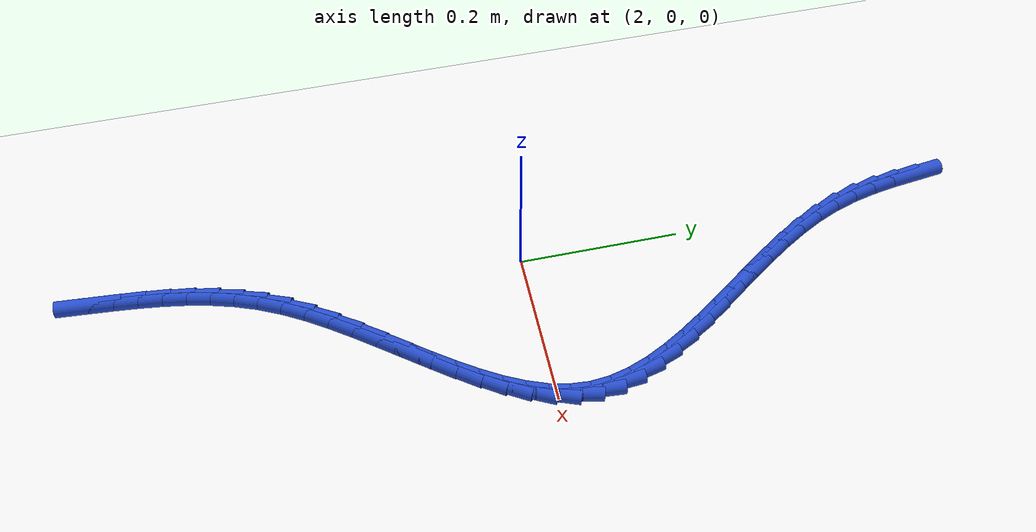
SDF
<sdf version="1.6">
 <world name="default">
  <model name="ground_plane">
   <static>1</static>
   <link name="link">
    <collision name="collision">
     <geometry><plane><normal>0 0 1</normal><size>100 100</size></plane></geometry>
     <surface><friction><ode><mu>100</mu><mu2>50</mu2></ode></friction></surface>
    </collision>
    <visual name="visual">
     <cast_shadows>0</cast_shadows>
     <geometry><plane><normal>0 0 1</normal><size>100 100</size></plane></geometry>
     <material>
      <script><uri>file://media/materials/scripts/gazebo.material</uri><name>Gazebo/WhiteGlow</name></script>
     </material>
    </visual>
   </link>
  </model>
  <model name="line">
   <link name="link_100">
    <pose>1.9789731982700294 0.5234563303718357 0.01 0 1.57 -1.442489842544429</pose>
    <collision name="collision">
     <geometry><cylinder><radius>0.01</radius><length>0.08</length></cylinder></geometry>
    </collision>
    <visual name="visual">
     <material>
      <script><name>Gazebo/Blue</name><uri>file://media/materials/scripts/gazebo.material</uri></script>
     </material>
     <geometry><cylinder><radius>0.01</radius><length>0.08</length></cylinder></geometry>
    </visual>
   </link>
   <link name="link_101">
    <pose>1.9827682625741108 0.49404070145301765 0.01 0 1.57 -1.396701460874202</pose>
    <collision name="collision">
     <geometry><cylinder><radius>0.01</radius><length>0.08</length></cylinder></geometry>
    </collision>
    <visual name="visual">
     <material>
      <script><name>Gazebo/Blue</name><uri>file://media/materials/scripts/gazebo.material</uri></script>
     </material>
     <geometry><cylinder><radius>0.01</radius><length>0.08</length></cylinder></geometry>
    </visual>
   </link>
   <link name="link_102">
    <pose>1.9879018797509533 0.4648517470543128 0.01 0 1.57 -1.3339024995470465</pose>
    <collision name="collision">
     <geometry><cylinder><radius>0.01</radius><length>0.08</length></cylinder></geometry>
    </collision>
    <visual name="visual">
     <material>
      <script><name>Gazebo/Blue</name><uri>file://media/materials/scripts/gazebo.material</uri></script>
     </material>
     <geometry><cylinder><radius>0.01</radius><length>0.08</length></cylinder></geometry>
    </visual>
   </link>
   <link name="link_103">
    <pose>1.9948804617679978 0.43594618995822454 0.01 0 1.57 -1.2551025554297721</pose>
    <collision name="collision">
     <geometry><cylinder><radius>0.01</radius><length>0.08</length></cylinder></geometry>
    </collision>
    <visual name="visual">
     <material>
      <script><name>Gazebo/Blue</name><uri>file://media/materials/scripts/gazebo.material</uri></script>
     </material>
     <geometry><cylinder><radius>0.01</radius><length>0.08</length></cylinder></geometry>
    </visual>
   </link>
   <link name="link_104">
    <pose>2.0042104205926834 0.4073807529472554 0.01 0 1.57 -1.1664924591884598</pose>
    <collision name="collision">
     <geometry><cylinder><radius>0.01</radius><length>0.08</length></cylinder></geometry>
    </collision>
    <visual name="visual">
     <material>
      <script><name>Gazebo/Blue</name><uri>file://media/materials/scripts/gazebo.material</uri></script>
     </material>
     <geometry><cylinder><radius>0.01</radius><length>0.08</length></cylinder></geometry>
    </visual>
   </link>
   <link name="link_105">
    <pose>2.016267477357713 0.3792018758489257 0.01 0 1.57 -1.0906297145826416</pose>
    <collision name="collision">
     <geometry><cylinder><radius>0.01</radius><length>0.08</length></cylinder></geometry>
    </collision>
    <visual name="visual">
     <material>
      <script><name>Gazebo/Blue</name><uri>file://media/materials/scripts/gazebo.material</uri></script>
     </material>
     <geometry><cylinder><radius>0.01</radius><length>0.08</length></cylinder></geometry>
    </visual>
   </link>
   <link name="link_106">
    <pose>2.0307460763740237 0.351402394587283 0.01 0 1.57 -1.0328853116858745</pose>
    <collision name="collision">
     <geometry><cylinder><radius>0.01</radius><length>0.08</length></cylinder></geometry>
    </collision>
    <visual name="visual">
     <material>
      <script><name>Gazebo/Blue</name><uri>file://media/materials/scripts/gazebo.material</uri></script>
     </material>
     <geometry><cylinder><radius>0.01</radius><length>0.08</length></cylinder></geometry>
    </visual>
   </link>
   <link name="link_107">
    <pose>2.04711938431422 0.3239577346229828 0.01 0 1.57 -0.9914016126853762</pose>
    <collision name="collision">
     <geometry><cylinder><radius>0.01</radius><length>0.08</length></cylinder></geometry>
    </collision>
    <visual name="visual">
     <material>
      <script><name>Gazebo/Blue</name><uri>file://media/materials/scripts/gazebo.material</uri></script>
     </material>
     <geometry><cylinder><radius>0.01</radius><length>0.08</length></cylinder></geometry>
    </visual>
   </link>
   <link name="link_108">
    <pose>2.0648604509285953 0.2968433122170539 0.01 0 1.57 -0.9646981824002314</pose>
    <collision name="collision">
     <geometry><cylinder><radius>0.01</radius><length>0.08</length></cylinder></geometry>
    </collision>
    <visual name="visual">
     <material>
      <script><name>Gazebo/Blue</name><uri>file://media/materials/scripts/gazebo.material</uri></script>
     </material>
     <geometry><cylinder><radius>0.01</radius><length>0.08</length></cylinder></geometry>
    </visual>
   </link>
   <link name="link_109">
    <pose>2.0834423259674444 0.2700345436305261 0.01 0 1.57 -0.9518616013607106</pose>
    <collision name="collision">
     <geometry><cylinder><radius>0.01</radius><length>0.08</length></cylinder></geometry>
    </collision>
    <visual name="visual">
     <material>
      <script><name>Gazebo/Blue</name><uri>file://media/materials/scripts/gazebo.material</uri></script>
     </material>
     <geometry><cylinder><radius>0.01</radius><length>0.08</length></cylinder></geometry>
    </visual>
   </link>
   <link name="link_110">
    <pose>2.1023380591810605 0.2435068451244283 0.01 0 1.57 -0.9526295947541242</pose>
    <collision name="collision">
     <geometry><cylinder><radius>0.01</radius><length>0.08</length></cylinder></geometry>
    </collision>
    <visual name="visual">
     <material>
      <script><name>Gazebo/Blue</name><uri>file://media/materials/scripts/gazebo.material</uri></script>
     </material>
     <geometry><cylinder><radius>0.01</radius><length>0.08</length></cylinder></geometry>
    </visual>
   </link>
   <link name="link_111">
    <pose>2.121020700319741 0.21723563295978968 0.01 0 1.57 -0.9674516871745473</pose>
    <collision name="collision">
     <geometry><cylinder><radius>0.01</radius><length>0.08</length></cylinder></geometry>
    </collision>
    <visual name="visual">
     <material>
      <script><name>Gazebo/Blue</name><uri>file://media/materials/scripts/gazebo.material</uri></script>
     </material>
     <geometry><cylinder><radius>0.01</radius><length>0.08</length></cylinder></geometry>
    </visual>
   </link>
   <link name="link_112">
    <pose>2.1389632991337777 0.19119632339763887 0.01 0 1.57 -0.9975621962289339</pose>
    <collision name="collision">
     <geometry><cylinder><radius>0.01</radius><length>0.08</length></cylinder></geometry>
    </collision>
    <visual name="visual">
     <material>
      <script><name>Gazebo/Blue</name><uri>file://media/materials/scripts/gazebo.material</uri></script>
     </material>
     <geometry><cylinder><radius>0.01</radius><length>0.08</length></cylinder></geometry>
    </visual>
   </link>
   <link name="link_113">
    <pose>2.155638905373467 0.16536433269900594 0.01 0 1.57 -1.0450639016673717</pose>
    <collision name="collision">
     <geometry><cylinder><radius>0.01</radius><length>0.08</length></cylinder></geometry>
    </collision>
    <visual name="visual">
     <material>
      <script><name>Gazebo/Blue</name><uri>file://media/materials/scripts/gazebo.material</uri></script>
     </material>
     <geometry><cylinder><radius>0.01</radius><length>0.08</length></cylinder></geometry>
    </visual>
   </link>
   <link name="link_114">
    <pose>2.1705205687891014 0.13971507712491954 0.01 0 1.57 -1.1129646135140494</pose>
    <collision name="collision">
     <geometry><cylinder><radius>0.01</radius><length>0.08</length></cylinder></geometry>
    </collision>
    <visual name="visual">
     <material>
      <script><name>Gazebo/Blue</name><uri>file://media/materials/scripts/gazebo.material</uri></script>
     </material>
     <geometry><cylinder><radius>0.01</radius><length>0.08</length></cylinder></geometry>
    </visual>
   </link>
   <link name="link_115">
    <pose>2.1830813391309776 0.11422397293640854 0.01 0 1.57 -1.204996405768868</pose>
    <collision name="collision">
     <geometry><cylinder><radius>0.01</radius><length>0.08</length></cylinder></geometry>
    </collision>
    <visual name="visual">
     <material>
      <script><name>Gazebo/Blue</name><uri>file://media/materials/scripts/gazebo.material</uri></script>
     </material>
     <geometry><cylinder><radius>0.01</radius><length>0.08</length></cylinder></geometry>
    </visual>
   </link>
   <link name="link_116">
    <pose>2.192794266149388 0.0888664363945028 0.01 0 1.57 -1.3248488865939523</pose>
    <collision name="collision">
     <geometry><cylinder><radius>0.01</radius><length>0.08</length></cylinder></geometry>
    </collision>
    <visual name="visual">
     <material>
      <script><name>Gazebo/Blue</name><uri>file://media/materials/scripts/gazebo.material</uri></script>
     </material>
     <geometry><cylinder><radius>0.01</radius><length>0.08</length></cylinder></geometry>
    </visual>
   </link>
   <link name="link_117">
    <pose>2.1991323995946277 0.06361788376023114 0.01 0 1.57 -1.4742773128624376</pose>
    <collision name="collision">
     <geometry><cylinder><radius>0.01</radius><length>0.08</length></cylinder></geometry>
    </collision>
    <visual name="visual">
     <material>
      <script><name>Gazebo/Blue</name><uri>file://media/materials/scripts/gazebo.material</uri></script>
     </material>
     <geometry><cylinder><radius>0.01</radius><length>0.08</length></cylinder></geometry>
    </visual>
   </link>
   <link name="link_118">
    <pose>2.2015687892169917 0.03845373129462267 0.01 0 1.57 1.4949758096616872</pose>
    <collision name="collision">
     <geometry><cylinder><radius>0.01</radius><length>0.08</length></cylinder></geometry>
    </collision>
    <visual name="visual">
     <material>
      <script><name>Gazebo/Blue</name><uri>file://media/materials/scripts/gazebo.material</uri></script>
     </material>
     <geometry><cylinder><radius>0.01</radius><length>0.08</length></cylinder></geometry>
    </visual>
   </link>
   <link name="link_119">
    <pose>2.1996616515919047 0.013348631215002639 0.01 0 1.57 1.3350141067897716</pose>
    <collision name="collision">
     <geometry><cylinder><radius>0.01</radius><length>0.08</length></cylinder></geometry>
    </collision>
    <visual name="visual">
     <material>
      <script><name>Gazebo/Blue</name><uri>file://media/materials/scripts/gazebo.material</uri></script>
     </material>
     <geometry><cylinder><radius>0.01</radius><length>0.08</length></cylinder></geometry>
    </visual>
   </link>
   <link name="link_120">
    <pose>2.193636786939351 -0.011728753249144852 0.01 0 1.57 1.2052090450447113</pose>
    <collision name="collision">
     <geometry><cylinder><radius>0.01</radius><length>0.08</length></cylinder></geometry>
    </collision>
    <visual name="visual">
     <material>
      <script><name>Gazebo/Blue</name><uri>file://media/materials/scripts/gazebo.material</uri></script>
     </material>
     <geometry><cylinder><radius>0.01</radius><length>0.08</length></cylinder></geometry>
    </visual>
   </link>
   <link name="link_121">
    <pose>2.184034816128595 -0.03681258316916593 0.01 0 1.57 1.1047832272879778</pose>
    <collision name="collision">
     <geometry><cylinder><radius>0.01</radius><length>0.08</length></cylinder></geometry>
    </collision>
    <visual name="visual">
     <material>
      <script><name>Gazebo/Blue</name><uri>file://media/materials/scripts/gazebo.material</uri></script>
     </material>
     <geometry><cylinder><radius>0.01</radius><length>0.08</length></cylinder></geometry>
    </visual>
   </link>
   <link name="link_122">
    <pose>2.1713982119206263 -0.061937036229990555 0.01 0 1.57 1.0301080561248646</pose>
    <collision name="collision">
     <geometry><cylinder><radius>0.01</radius><length>0.08</length></cylinder></geometry>
    </collision>
    <visual name="visual">
     <material>
      <script><name>Gazebo/Blue</name><uri>file://media/materials/scripts/gazebo.material</uri></script>
     </material>
     <geometry><cylinder><radius>0.01</radius><length>0.08</length></cylinder></geometry>
    </visual>
   </link>
   <link name="link_123">
    <pose>2.1562694470764345 -0.08713629011654869 0.01 0 1.57 0.9771716499087635</pose>
    <collision name="collision">
     <geometry><cylinder><radius>0.01</radius><length>0.08</length></cylinder></geometry>
    </collision>
    <visual name="visual">
     <material>
      <script><name>Gazebo/Blue</name><uri>file://media/materials/scripts/gazebo.material</uri></script>
     </material>
     <geometry><cylinder><radius>0.01</radius><length>0.08</length></cylinder></geometry>
    </visual>
   </link>
   <link name="link_124">
    <pose>2.13919099435701 -0.11244452251377032 0.01 0 1.57 0.9426282094787551</pose>
    <collision name="collision">
     <geometry><cylinder><radius>0.01</radius><length>0.08</length></cylinder></geometry>
    </collision>
    <visual name="visual">
     <material>
      <script><name>Gazebo/Blue</name><uri>file://media/materials/scripts/gazebo.material</uri></script>
     </material>
     <geometry><cylinder><radius>0.01</radius><length>0.08</length></cylinder></geometry>
    </visual>
   </link>
   <link name="link_125">
    <pose>2.1207053265233426 -0.13789591110658606 0.01 0 1.57 0.9240848797600391</pose>
    <collision name="collision">
     <geometry><cylinder><radius>0.01</radius><length>0.08</length></cylinder></geometry>
    </collision>
    <visual name="visual">
     <material>
      <script><name>Gazebo/Blue</name><uri>file://media/materials/scripts/gazebo.material</uri></script>
     </material>
     <geometry><cylinder><radius>0.01</radius><length>0.08</length></cylinder></geometry>
    </visual>
   </link>
   <link name="link_126">
    <pose>2.1013549163364225 -0.16352463357992447 0.01 0 1.57 0.9200898716887591</pose>
    <collision name="collision">
     <geometry><cylinder><radius>0.01</radius><length>0.08</length></cylinder></geometry>
    </collision>
    <visual name="visual">
     <material>
      <script><name>Gazebo/Blue</name><uri>file://media/materials/scripts/gazebo.material</uri></script>
     </material>
     <geometry><cylinder><radius>0.01</radius><length>0.08</length></cylinder></geometry>
    </visual>
   </link>
   <link name="link_127">
    <pose>2.0816822365572407 -0.18936486761871626 0.01 0 1.57 0.9300478867373808</pose>
    <collision name="collision">
     <geometry><cylinder><radius>0.01</radius><length>0.08</length></cylinder></geometry>
    </collision>
    <visual name="visual">
     <material>
      <script><name>Gazebo/Blue</name><uri>file://media/materials/scripts/gazebo.material</uri></script>
     </material>
     <geometry><cylinder><radius>0.01</radius><length>0.08</length></cylinder></geometry>
    </visual>
   </link>
   <link name="link_128">
    <pose>2.062229759946786 -0.21545079090789135 0.01 0 1.57 0.9541450700603006</pose>
    <collision name="collision">
     <geometry><cylinder><radius>0.01</radius><length>0.08</length></cylinder></geometry>
    </collision>
    <visual name="visual">
     <material>
      <script><name>Gazebo/Blue</name><uri>file://media/materials/scripts/gazebo.material</uri></script>
     </material>
     <geometry><cylinder><radius>0.01</radius><length>0.08</length></cylinder></geometry>
    </visual>
   </link>
   <link name="link_129">
    <pose>2.043539959266049 -0.2418165811323797 0.01 0 1.57 0.9932952641279286</pose>
    <collision name="collision">
     <geometry><cylinder><radius>0.01</radius><length>0.08</length></cylinder></geometry>
    </collision>
    <visual name="visual">
     <material>
      <script><name>Gazebo/Blue</name><uri>file://media/materials/scripts/gazebo.material</uri></script>
     </material>
     <geometry><cylinder><radius>0.01</radius><length>0.08</length></cylinder></geometry>
    </visual>
   </link>
   <link name="link_130">
    <pose>2.02615530727602 -0.26849641597711127 0.01 0 1.57 1.0490761212808883</pose>
    <collision name="collision">
     <geometry><cylinder><radius>0.01</radius><length>0.08</length></cylinder></geometry>
    </collision>
    <visual name="visual">
     <material>
      <script><name>Gazebo/Blue</name><uri>file://media/materials/scripts/gazebo.material</uri></script>
     </material>
     <geometry><cylinder><radius>0.01</radius><length>0.08</length></cylinder></geometry>
    </visual>
   </link>
   <link name="link_131">
    <pose>2.0106182767376892 -0.295524473127016 0.01 0 1.57 1.1234745351676572</pose>
    <collision name="collision">
     <geometry><cylinder><radius>0.01</radius><length>0.08</length></cylinder></geometry>
    </collision>
    <visual name="visual">
     <material>
      <script><name>Gazebo/Blue</name><uri>file://media/materials/scripts/gazebo.material</uri></script>
     </material>
     <geometry><cylinder><radius>0.01</radius><length>0.08</length></cylinder></geometry>
    </visual>
   </link>
   <link name="link_132">
    <pose>1.9974680436174115 -0.3229347154927884 0.01 0 1.57 1.2088451759315884</pose>
    <collision name="collision">
     <geometry><cylinder><radius>0.01</radius><length>0.08</length></cylinder></geometry>
    </collision>
    <visual name="visual">
     <material>
      <script><name>Gazebo/Blue</name><uri>file://media/materials/scripts/gazebo.material</uri></script>
     </material>
     <geometry><cylinder><radius>0.01</radius><length>0.08</length></cylinder></geometry>
    </visual>
   </link>
   <link name="link_133">
    <pose>1.9869395830829175 -0.3507412884042779 0.01 0 1.57 1.2870743359011345</pose>
    <collision name="collision">
     <geometry><cylinder><radius>0.01</radius><length>0.08</length></cylinder></geometry>
    </collision>
    <visual name="visual">
     <material>
      <script><name>Gazebo/Blue</name><uri>file://media/materials/scripts/gazebo.material</uri></script>
     </material>
     <geometry><cylinder><radius>0.01</radius><length>0.08</length></cylinder></geometry>
    </visual>
   </link>
   <link name="link_134">
    <pose>1.9787221843647145 -0.378922787727875 0.01 0 1.57 1.3543468516605144</pose>
    <collision name="collision">
     <geometry><cylinder><radius>0.01</radius><length>0.08</length></cylinder></geometry>
    </collision>
    <visual name="visual">
     <material>
      <script><name>Gazebo/Blue</name><uri>file://media/materials/scripts/gazebo.material</uri></script>
     </material>
     <geometry><cylinder><radius>0.01</radius><length>0.08</length></cylinder></geometry>
    </visual>
   </link>
   <link name="link_135">
    <pose>1.9724483100424548 -0.40745410727937514 0.01 0 1.57 1.4094079316045043</pose>
    <collision name="collision">
     <geometry><cylinder><radius>0.01</radius><length>0.08</length></cylinder></geometry>
    </collision>
    <visual name="visual">
     <material>
      <script><name>Gazebo/Blue</name><uri>file://media/materials/scripts/gazebo.material</uri></script>
     </material>
     <geometry><cylinder><radius>0.01</radius><length>0.08</length></cylinder></geometry>
    </visual>
   </link>
   <link name="link_136">
    <pose>1.9677504226957905 -0.43631014087457376 0.01 0 1.57 1.451679805794794</pose>
    <collision name="collision">
     <geometry><cylinder><radius>0.01</radius><length>0.08</length></cylinder></geometry>
    </collision>
    <visual name="visual">
     <material>
      <script><name>Gazebo/Blue</name><uri>file://media/materials/scripts/gazebo.material</uri></script>
     </material>
     <geometry><cylinder><radius>0.01</radius><length>0.08</length></cylinder></geometry>
    </visual>
   </link>
   <link name="link_137">
    <pose>1.9642609849043735 -0.4654657823292662 0.01 0 1.57 1.481044463173894</pose>
    <collision name="collision">
     <geometry><cylinder><radius>0.01</radius><length>0.08</length></cylinder></geometry>
    </collision>
    <visual name="visual">
     <material>
      <script><name>Gazebo/Blue</name><uri>file://media/materials/scripts/gazebo.material</uri></script>
     </material>
     <geometry><cylinder><radius>0.01</radius><length>0.08</length></cylinder></geometry>
    </visual>
   </link>
   <link name="link_138">
    <pose>1.9616124592478559 -0.49489592545924777 0.01 0 1.57 1.4976392220722985</pose>
    <collision name="collision">
     <geometry><cylinder><radius>0.01</radius><length>0.08</length></cylinder></geometry>
    </collision>
    <visual name="visual">
     <material>
      <script><name>Gazebo/Blue</name><uri>file://media/materials/scripts/gazebo.material</uri></script>
     </material>
     <geometry><cylinder><radius>0.01</radius><length>0.08</length></cylinder></geometry>
    </visual>
   </link>
   <link name="link_139">
    <pose>1.9594373083058905 -0.5245754640803141 0.01 0 1.57 1.5017075083381</pose>
    <collision name="collision">
     <geometry><cylinder><radius>0.01</radius><length>0.08</length></cylinder></geometry>
    </collision>
    <visual name="visual">
     <material>
      <script><name>Gazebo/Blue</name><uri>file://media/materials/scripts/gazebo.material</uri></script>
     </material>
     <geometry><cylinder><radius>0.01</radius><length>0.08</length></cylinder></geometry>
    </visual>
   </link>
  </model>
 </world>
</sdf>
